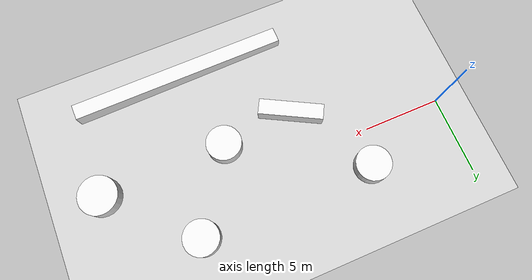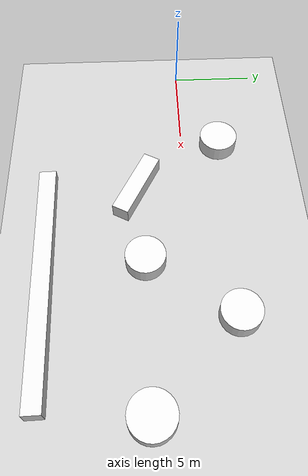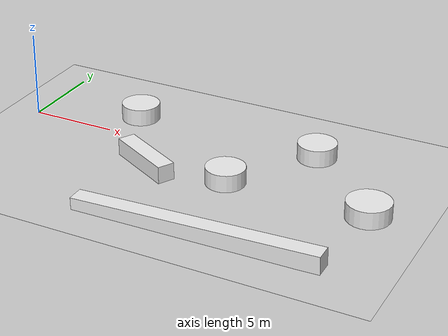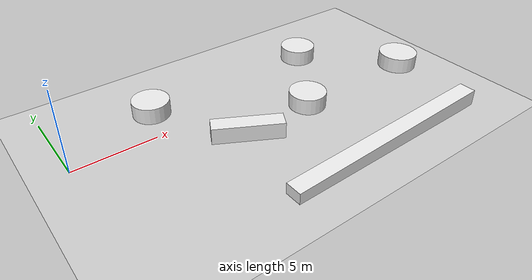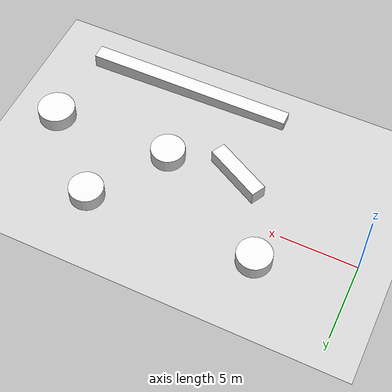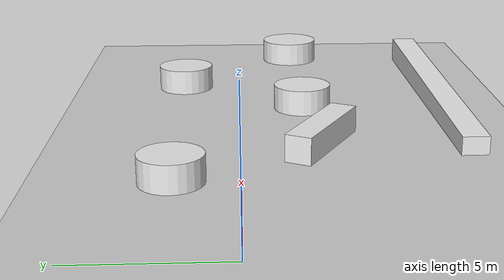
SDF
<sdf version="1.7">
 <world name="default">
  <light name="sun" type="directional">
   <pose>0 0 10 0 -0 0</pose>
   <diffuse>0.8 0.8 0.8 1</diffuse>
   <specular>0.2 0.2 0.2 1</specular>
   <attenuation>
    <range>1000</range>
    <constant>0.9</constant>
    <linear>0.01</linear>
    <quadratic>0.001</quadratic>
   </attenuation>
   <direction>-0.5 0.1 -0.9</direction>
   <spot><inner_angle>0</inner_angle><outer_angle>0</outer_angle><falloff>0</falloff></spot>
  </light>
  <model name="ground_plane">
   <static>1</static>
   <link name="link">
    <collision name="collision">
     <geometry><plane><normal>0 0 1</normal><size>100 100</size></plane></geometry>
     <surface>
      <contact><collide_bitmask>65535</collide_bitmask></contact>
      <friction><ode><mu>100</mu><mu2>50</mu2></ode></friction>
     </surface>
    </collision>
    <visual name="visual">
     <cast_shadows>0</cast_shadows>
     <geometry><plane><normal>0 0 1</normal><size>100 100</size></plane></geometry>
     <material>
      <script><uri>file://media/materials/scripts/gazebo.material</uri><name>Gazebo/Grey</name></script>
     </material>
    </visual>
   </link>
  </model>
  <gravity>0 0 -9.8</gravity>
  <magnetic_field>6e-06 2.3e-05 -4.2e-05</magnetic_field>
  <atmosphere type="adiabatic"/>
  <physics type="ode">
   <max_step_size>0.001</max_step_size>
   <real_time_factor>1</real_time_factor>
   <real_time_update_rate>3000</real_time_update_rate>
  </physics>
  <scene><ambient>0.4 0.4 0.4 1</ambient><background>0.7 0.7 0.7 1</background><shadows>1</shadows></scene>
  <spherical_coordinates>
   <surface_model>EARTH_WGS84</surface_model>
   <latitude_deg>0</latitude_deg>
   <longitude_deg>0</longitude_deg>
   <elevation>0</elevation>
   <heading_deg>0</heading_deg>
  </spherical_coordinates>
  <model name="unit_cylinder">
   <pose>22.0057 -2.37156 0.499995 -4e-06 -4e-06 -1e-05</pose>
   <static>1</static>
   <link name="link">
    <inertial>
     <mass>1</mass>
     <inertia><ixx>0.145833</ixx><ixy>0</ixy><ixz>0</ixz><iyy>0.145833</iyy><iyz>0</iyz><izz>0.125</izz></inertia>
    </inertial>
    <collision name="collision">
     <geometry><cylinder><radius>1.23873</radius><length>1</length></cylinder></geometry>
    </collision>
    <visual name="visual">
     <geometry><cylinder><radius>1.23873</radius><length>1</length></cylinder></geometry>
     <material>
      <script><name>Gazebo/White</name><uri>file://media/materials/scripts/gazebo.material</uri></script>
     </material>
    </visual>
   </link>
  </model>
  <model name="unit_cylinder_clone">
   <static>1</static>
   <pose>13.8419 -2.4766 0.499995 4e-06 4e-06 -1.6e-05</pose>
   <link name="link">
    <inertial>
     <mass>1</mass>
     <inertia><ixx>0.145833</ixx><ixy>0</ixy><ixz>0</ixz><iyy>0.145833</iyy><iyz>0</iyz><izz>0.125</izz></inertia>
    </inertial>
    <collision name="collision">
     <geometry><cylinder><radius>1.12862</radius><length>1</length></cylinder></geometry>
    </collision>
    <visual name="visual">
     <geometry><cylinder><radius>1.12862</radius><length>1</length></cylinder></geometry>
     <material>
      <script><name>Gazebo/White</name><uri>file://media/materials/scripts/gazebo.material</uri></script>
     </material>
    </visual>
   </link>
  </model>
  <model name="unit_cylinder_clone_0">
   <static>1</static>
   <pose>17.1433 2.37842 0.499992 -7e-06 7e-06 0.000141</pose>
   <link name="link">
    <inertial>
     <mass>1</mass>
     <inertia><ixx>0.145833</ixx><ixy>0</ixy><ixz>0</ixz><iyy>0.145833</iyy><iyz>0</iyz><izz>0.125</izz></inertia>
    </inertial>
    <collision name="collision">
     <geometry><cylinder><radius>1.12862</radius><length>1</length></cylinder></geometry>
    </collision>
    <visual name="visual">
     <geometry><cylinder><radius>1.12862</radius><length>1</length></cylinder></geometry>
     <material>
      <script><name>Gazebo/White</name><uri>file://media/materials/scripts/gazebo.material</uri></script>
     </material>
    </visual>
   </link>
  </model>
  <model name="unit_box">
   <static>1</static>
   <pose>9.12822 -2.88413 0.5 0 1e-06 -2.06003</pose>
   <link name="link">
    <inertial>
     <mass>1</mass>
     <inertia>
      <ixx>0.166667</ixx>
      <ixy>0</ixy>
      <ixz>0</ixz>
      <iyy>0.166667</iyy>
      <iyz>0</iyz>
      <izz>0.166667</izz>
     </inertia>
    </inertial>
    <collision name="collision"><geometry><box><size>1 4.12656 1</size></box></geometry></collision>
    <visual name="visual">
     <geometry><box><size>1 4.12656 1</size></box></geometry>
     <material>
      <script><name>Gazebo/White</name><uri>file://media/materials/scripts/gazebo.material</uri></script>
     </material>
    </visual>
   </link>
  </model>
  <model name="unit_box_clone">
   <static>1</static>
   <pose>14.9026 -8.07744 0.334288 0.023949 -0.000457 -1.55173</pose>
   <link name="link">
    <inertial>
     <mass>1</mass>
     <inertia>
      <ixx>0.166667</ixx>
      <ixy>0</ixy>
      <ixz>0</ixz>
      <iyy>0.166667</iyy>
      <iyz>0</iyz>
      <izz>0.166667</izz>
     </inertia>
    </inertial>
    <collision name="collision"><geometry><box><size>1 13.9115 1</size></box></geometry></collision>
    <visual name="visual">
     <geometry><box><size>1 13.9115 1</size></box></geometry>
     <material>
      <script><name>Gazebo/White</name><uri>file://media/materials/scripts/gazebo.material</uri></script>
     </material>
    </visual>
   </link>
  </model>
  <model name="unit_cylinder_clone_0_clone">
   <static>1</static>
   <pose>5.82505 2.2755 0.499995 -4e-06 -4e-06 -6e-06</pose>
   <link name="link">
    <inertial>
     <mass>1</mass>
     <inertia><ixx>0.145833</ixx><ixy>0</ixy><ixz>0</ixz><iyy>0.145833</iyy><iyz>0</iyz><izz>0.125</izz></inertia>
    </inertial>
    <collision name="collision">
     <geometry><cylinder><radius>1.12862</radius><length>1</length></cylinder></geometry>
    </collision>
    <visual name="visual">
     <geometry><cylinder><radius>1.12862</radius><length>1</length></cylinder></geometry>
     <material>
      <script><name>Gazebo/White</name><uri>file://media/materials/scripts/gazebo.material</uri></script>
     </material>
    </visual>
   </link>
  </model>
 </world>
</sdf>
